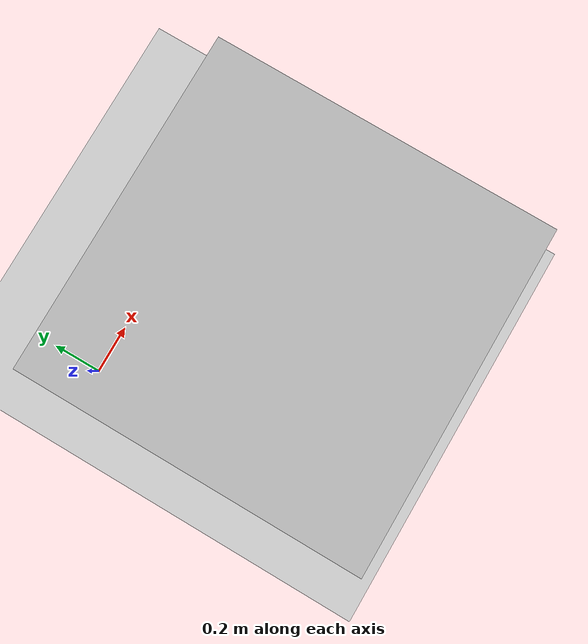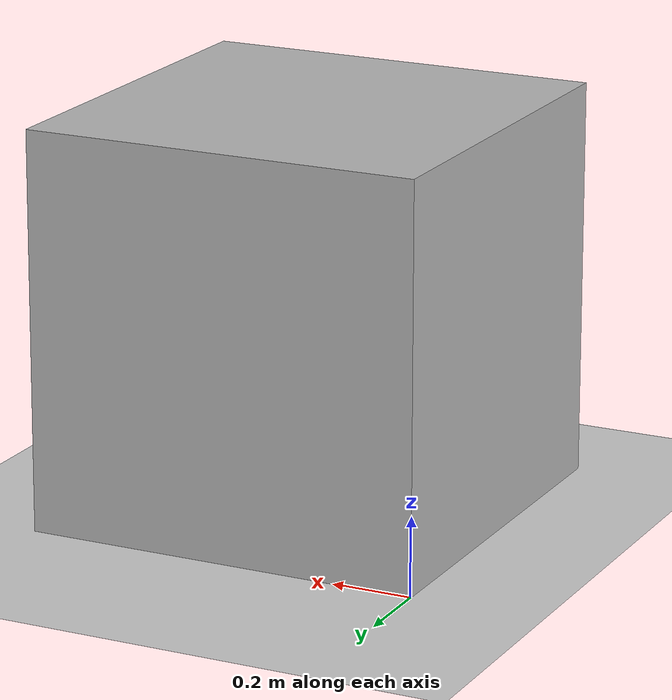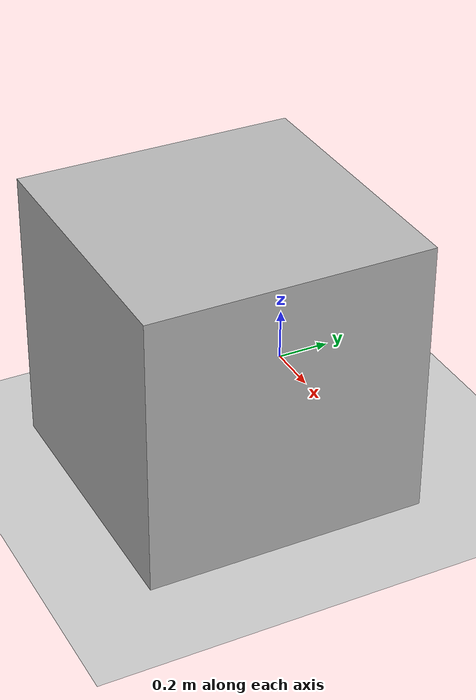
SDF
<?xml version="1.0" ?>
<sdf version="1.4">
  <world name="default">
    <include>
      <uri>model://ground_plane</uri>
    </include>
    <scene>
      <ambient>0.5 0.5 0.5 1</ambient>
      <background>0.5 0.5 0.5 1</background>
      <shadows>false</shadows>
    </scene>
    <include>
      <uri>model://sun</uri>
    </include>
    <physics type="ode">
      <gravity>0.0 0.0 -10.0</gravity>
      <ode>
        <solver>
          <type>quick</type>
          <iters>100</iters>
          <sor>1.0</sor>
        </solver>
        <constraints>
          <cfm>0</cfm>
          <erp>0.2</erp>
          <contact_max_correcting_vel>0</contact_max_correcting_vel>
          <contact_surface_layer>0.0</contact_surface_layer>
        </constraints>
      </ode>
      <max_step_size>0.001</max_step_size>
    </physics>
    <!-- model slides when cg is 0.3 0 0 -->
    <model name="model_1">
      <pose>0.5 -0.5 0.5 0.0 0.0 0.0</pose>
      <link name="link_1">
        <pose>0.0 0.0 0.0 0.0 0.0 0.0</pose>
        <inertial>
          <pose>0.45 0 0.0 0.0 0.0 0.0</pose>
          <inertia>
            <ixx>1.0</ixx>
            <ixy>0.0</ixy>
            <ixz>0.0</ixz>
            <iyy>1.0</iyy>
            <iyz>0.0</iyz>
            <izz>1.0</izz>
          </inertia>
          <mass>10000.0</mass>
        </inertial>
        <visual name="visual_box">
          <pose>0.0 0.0 0.0 0.0 0.0 0.0</pose>
          <geometry>
            <box>
              <size>1 1 1</size>
            </box>
          </geometry>
          <material>
            <script>Gazebo/Green</script>
          </material>
          <laser_retro>100.0</laser_retro>
        </visual>
        <collision name="collision_box">
          <pose>0.0 0.0 0.0 0.0 0.0 0.0</pose>
          <max_contacts>250</max_contacts>
          <geometry>
            <box>
              <size>1 1 1</size>
            </box>
          </geometry>
          <surface>
            <friction>
              <ode>
                <mu>100.0</mu>
                <mu2>100.0</mu2>
              </ode>
            </friction>
            <contact>
              <ode>
                <kp>1000000000000.0</kp>
                <kd>10000000000.0</kd>
                <max_vel>0</max_vel>
                <min_depth>0.0</min_depth>
              </ode>
            </contact>
          </surface>
          <laser_retro>100.0</laser_retro>
        </collision>
        <gravity>true</gravity>
        <self_collide>true</self_collide>
        <kinematic>false</kinematic>
      </link>
      <static>false</static>
    </model>
  </world>
</sdf>
